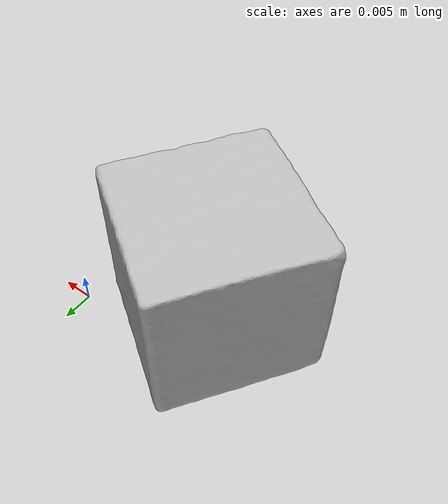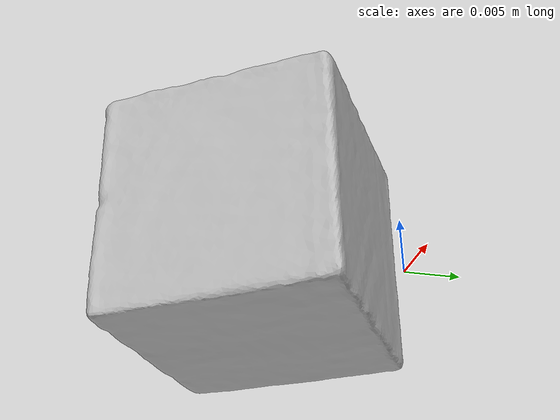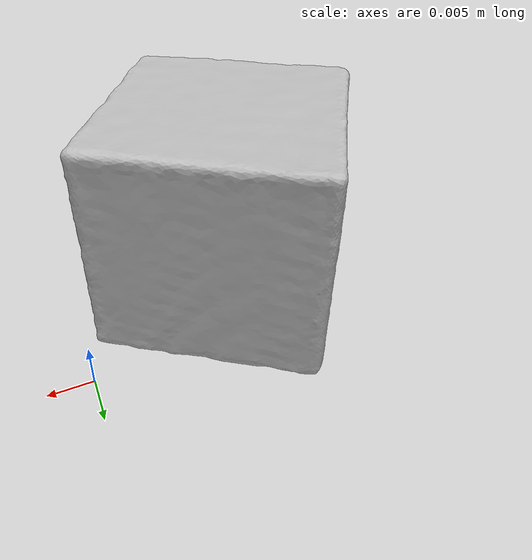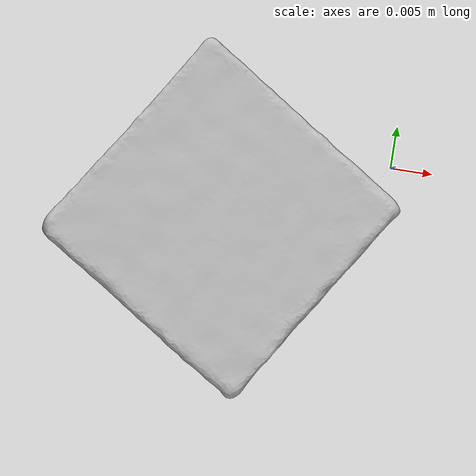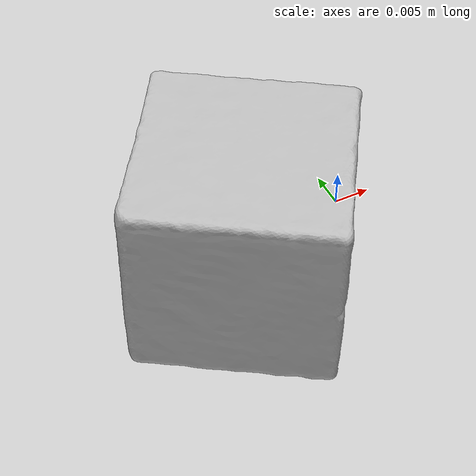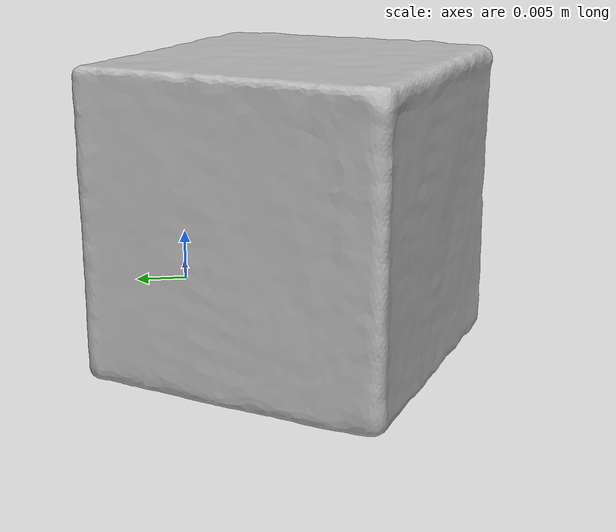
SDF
<?xml version='1.0'?>
<sdf version="1.4">
  <model name="b_colored_wood_blocks">
    <static>false</static>
    <link name="link">
      <inertial>
        <pose>-0.018821263920805856 -0.008818559894969998 0.012633433800824469 2.8243865063450944 -0.601521690822469 2.6738516755627217</pose>
        <mass>1.6408287444917165e-05</mass>
        <inertia>
          <ixx>1.776314179684534e-09</ixx>
          <ixy>-2.0281536270659942e-25</ixy>
          <ixz>-2.379918673143858e-25</ixz>
          <iyy>1.7649600209721163e-09</iyy>
          <iyz>-3.4245419917391636e-25</iyz>
          <izz>1.7544145643022807e-09</izz>
        </inertia>
      </inertial>
      <collision name="collision">
        <geometry>
          <mesh>
            <!-- Use a downsampled mesh for collisions -->
            <uri>model://070-b_colored_wood_blocks/google_16k/070-b_colored_wood_blocks.obj</uri>
            </mesh>
        </geometry>
        <surface>
          <friction>
            <ode>
              <mu>0.9</mu>
              <mu2>0.9</mu2>
            </ode>
          </friction>
          <contact>
            <ode>
              <kp>1000000000000.0</kp>
              <kd>1</kd>
              <min_depth>0.0001</min_depth>
              <max_vel>0.01</max_vel>
            </ode>
          </contact>
          <bounce>
            <restitution_coefficient>0.1</restitution_coefficient>
            <threshold>1000.0</threshold>
          </bounce>
        </surface>
      </collision>
      <visual name="visual">
        <geometry>
          <mesh>
            <uri>model://070-b_colored_wood_blocks/google_16k/070-b_colored_wood_blocks.dae</uri>
            </mesh>
        </geometry>
      </visual>
    </link>
  </model>
</sdf>
